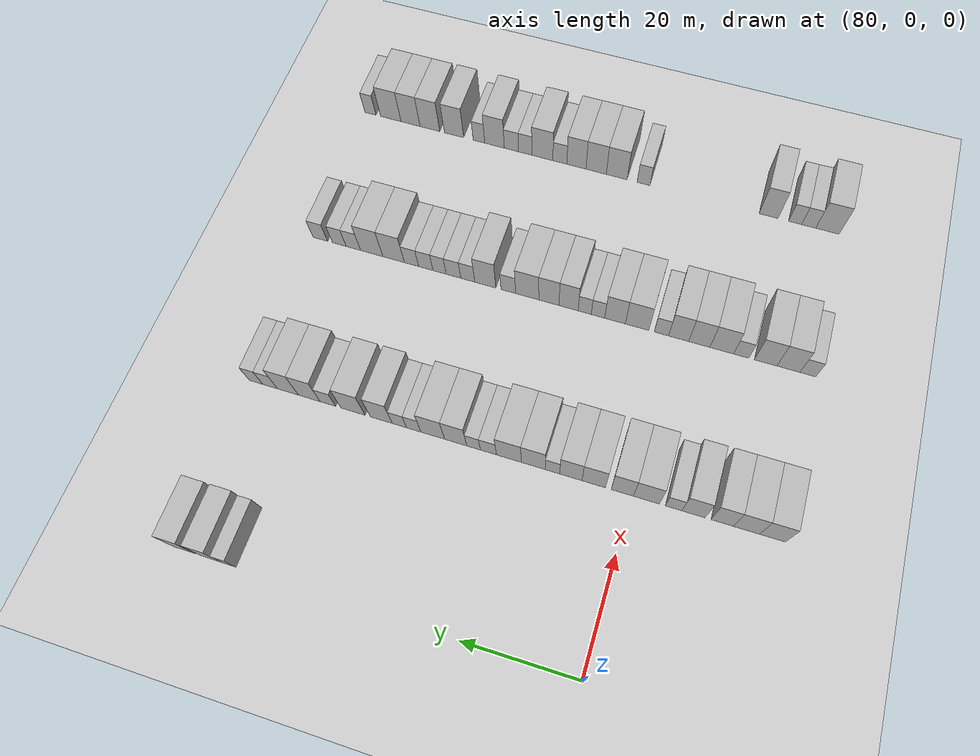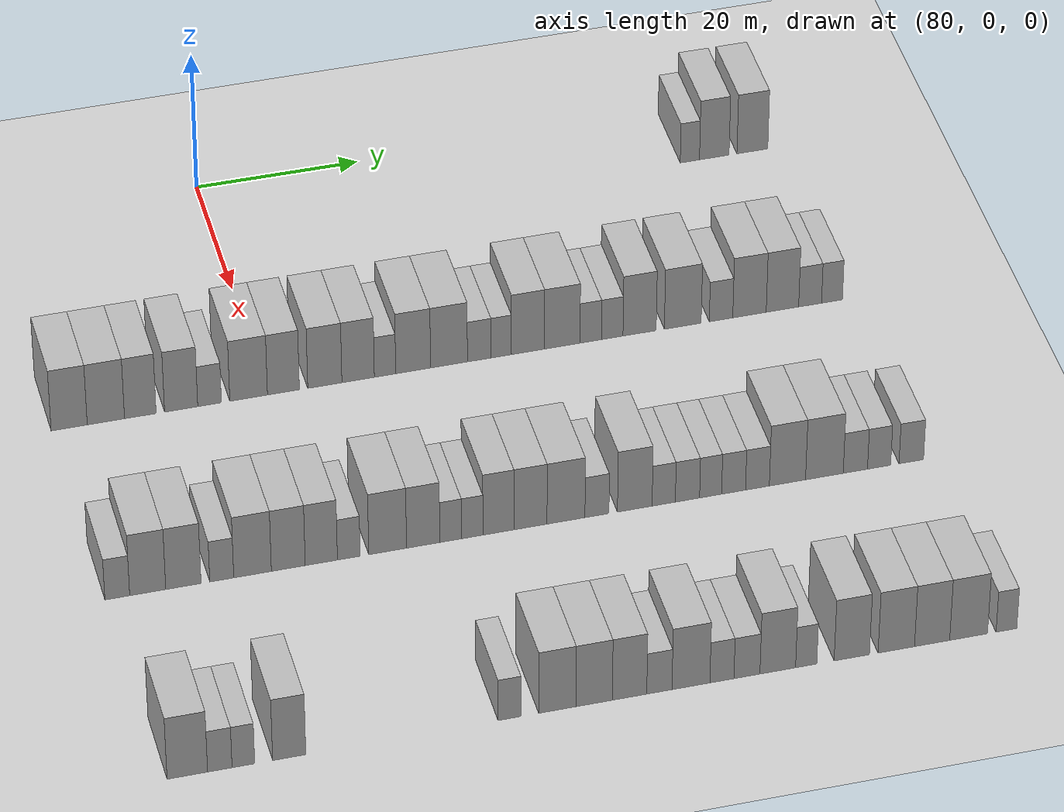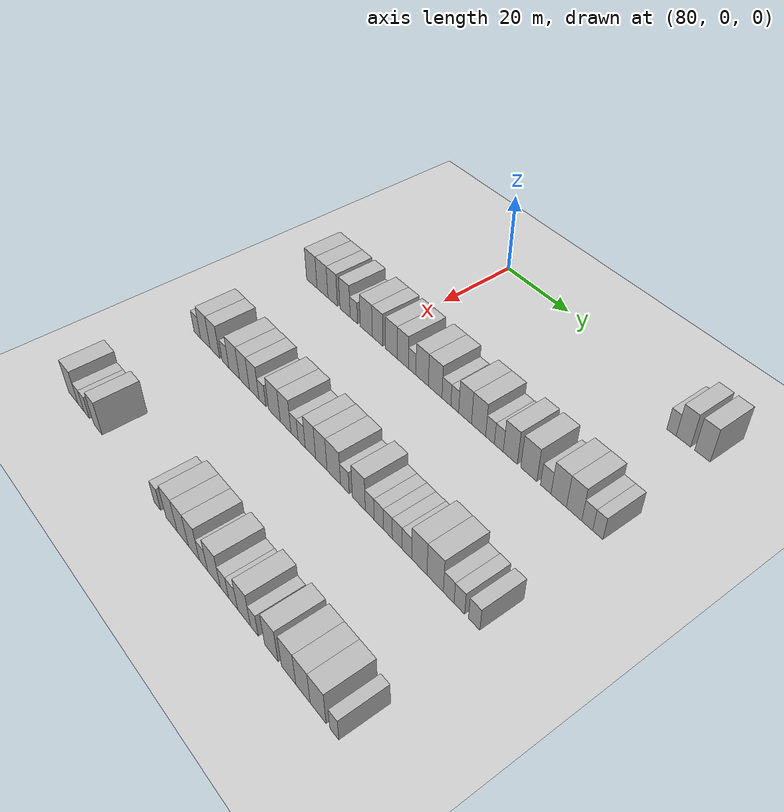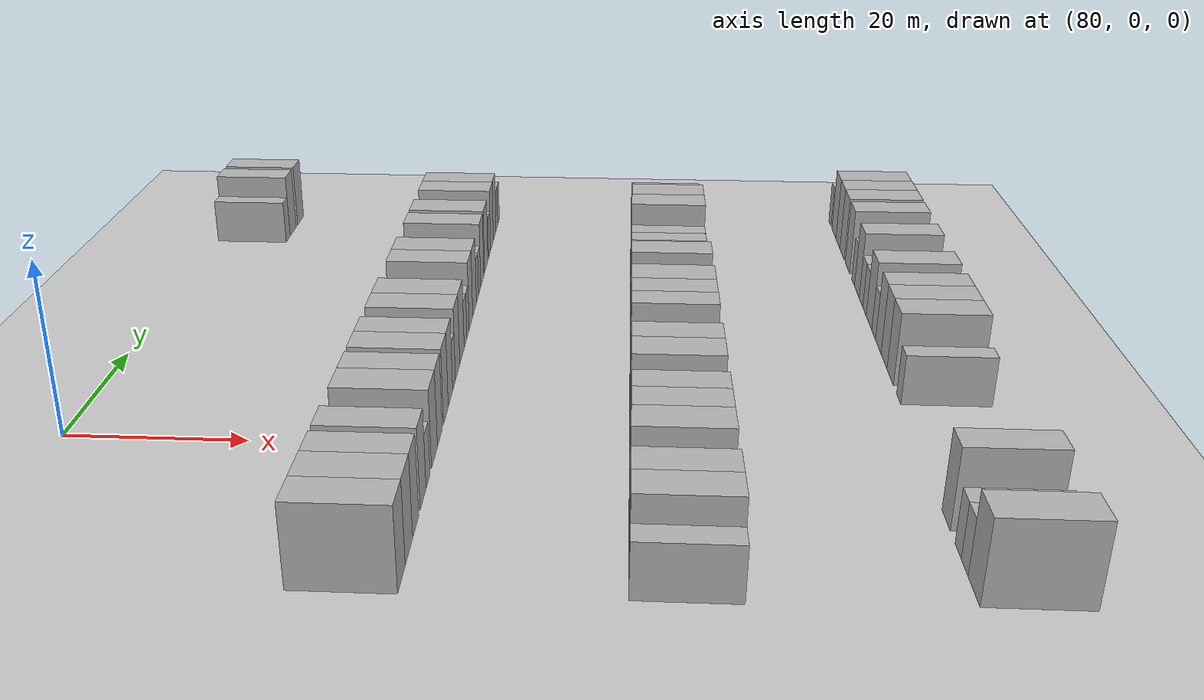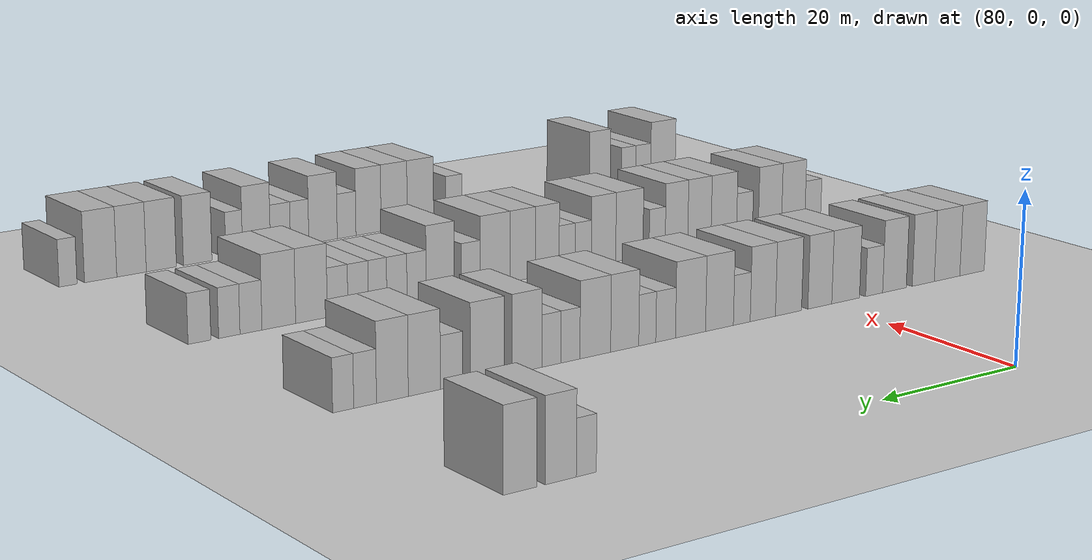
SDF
<sdf version="1.6">
 <world name="default">
  <include>
   <name>ground_plane_2</name>
   <uri>model://HANNAS_ground_plane</uri>
   <pose>100 0 0  0 0 0</pose>
  </include>
  <model name="building_613">
   <static>1</static>
   <pose>85.0000 59.2062 0 0.000000 0.000000 0.000000</pose>
   <link name="link">
    <pose>0 0 3.00 0 0 0</pose>
    <collision name="collision"><geometry><box><size>10.0000 2.4349 6.0000</size></box></geometry></collision>
    <visual name="visual">
     <cast_shadows>0</cast_shadows>
     <geometry><box><size>10.0000 2.4349 6.0000</size></box></geometry>
     <material>
      <script>
       <uri>model://HANNAS_wall/materials/scripts</uri>
       <uri>model://HANNAS_wall/materials/textures</uri>
       <name>vrc/HANNAS_wall</name>
      </script>
     </material>
    </visual>
   </link>
  </model>
  <model name="building_614">
   <static>1</static>
   <pose>85.0000 62.2932 0 0.000000 0.000000 0.000000</pose>
   <link name="link">
    <pose>0 0 4.50 0 0 0</pose>
    <collision name="collision"><geometry><box><size>10.0000 3.7392 9.0000</size></box></geometry></collision>
    <visual name="visual">
     <cast_shadows>0</cast_shadows>
     <geometry><box><size>10.0000 3.7392 9.0000</size></box></geometry>
     <material>
      <script>
       <uri>model://HANNAS_wall/materials/scripts</uri>
       <uri>model://HANNAS_wall/materials/textures</uri>
       <name>vrc/HANNAS_wall</name>
      </script>
     </material>
    </visual>
   </link>
  </model>
  <model name="building_615">
   <static>1</static>
   <pose>85.0000 67.1182 0 0.000000 0.000000 0.000000</pose>
   <link name="link">
    <pose>0 0 4.50 0 0 0</pose>
    <collision name="collision"><geometry><box><size>10.0000 3.9108 9.0000</size></box></geometry></collision>
    <visual name="visual">
     <cast_shadows>0</cast_shadows>
     <geometry><box><size>10.0000 3.9108 9.0000</size></box></geometry>
     <material>
      <script>
       <uri>model://HANNAS_wall/materials/scripts</uri>
       <uri>model://HANNAS_wall/materials/textures</uri>
       <name>vrc/HANNAS_wall</name>
      </script>
     </material>
    </visual>
   </link>
  </model>
  <model name="building_824">
   <static>1</static>
   <pose>115.0000 -23.7211 0 0.000000 0.000000 0.000000</pose>
   <link name="link">
    <pose>0 0 4.50 0 0 0</pose>
    <collision name="collision"><geometry><box><size>10.0000 4.2530 9.0000</size></box></geometry></collision>
    <visual name="visual">
     <cast_shadows>0</cast_shadows>
     <geometry><box><size>10.0000 4.2530 9.0000</size></box></geometry>
     <material>
      <script>
       <uri>model://HANNAS_wall/materials/scripts</uri>
       <uri>model://HANNAS_wall/materials/textures</uri>
       <name>vrc/HANNAS_wall</name>
      </script>
     </material>
    </visual>
   </link>
  </model>
  <model name="building_825">
   <static>1</static>
   <pose>115.0000 -19.3977 0 0.000000 0.000000 0.000000</pose>
   <link name="link">
    <pose>0 0 4.50 0 0 0</pose>
    <collision name="collision"><geometry><box><size>10.0000 4.3937 9.0000</size></box></geometry></collision>
    <visual name="visual">
     <cast_shadows>0</cast_shadows>
     <geometry><box><size>10.0000 4.3937 9.0000</size></box></geometry>
     <material>
      <script>
       <uri>model://HANNAS_wall/materials/scripts</uri>
       <uri>model://HANNAS_wall/materials/textures</uri>
       <name>vrc/HANNAS_wall</name>
      </script>
     </material>
    </visual>
   </link>
  </model>
  <model name="building_826">
   <static>1</static>
   <pose>115.0000 -15.3329 0 0.000000 0.000000 0.000000</pose>
   <link name="link">
    <pose>0 0 4.50 0 0 0</pose>
    <collision name="collision"><geometry><box><size>10.0000 3.7359 9.0000</size></box></geometry></collision>
    <visual name="visual">
     <cast_shadows>0</cast_shadows>
     <geometry><box><size>10.0000 3.7359 9.0000</size></box></geometry>
     <material>
      <script>
       <uri>model://HANNAS_wall/materials/scripts</uri>
       <uri>model://HANNAS_wall/materials/textures</uri>
       <name>vrc/HANNAS_wall</name>
      </script>
     </material>
    </visual>
   </link>
  </model>
  <model name="building_827">
   <static>1</static>
   <pose>115.0000 -10.4981 0 0.000000 0.000000 0.000000</pose>
   <link name="link">
    <pose>0 0 4.50 0 0 0</pose>
    <collision name="collision"><geometry><box><size>10.0000 3.9338 9.0000</size></box></geometry></collision>
    <visual name="visual">
     <cast_shadows>0</cast_shadows>
     <geometry><box><size>10.0000 3.9338 9.0000</size></box></geometry>
     <material>
      <script>
       <uri>model://HANNAS_wall/materials/scripts</uri>
       <uri>model://HANNAS_wall/materials/textures</uri>
       <name>vrc/HANNAS_wall</name>
      </script>
     </material>
    </visual>
   </link>
  </model>
  <model name="building_828">
   <static>1</static>
   <pose>115.0000 -7.1282 0 0.000000 0.000000 0.000000</pose>
   <link name="link">
    <pose>0 0 3.00 0 0 0</pose>
    <collision name="collision"><geometry><box><size>10.0000 2.8060 6.0000</size></box></geometry></collision>
    <visual name="visual">
     <cast_shadows>0</cast_shadows>
     <geometry><box><size>10.0000 2.8060 6.0000</size></box></geometry>
     <material>
      <script>
       <uri>model://HANNAS_wall/materials/scripts</uri>
       <uri>model://HANNAS_wall/materials/textures</uri>
       <name>vrc/HANNAS_wall</name>
      </script>
     </material>
    </visual>
   </link>
  </model>
  <model name="building_829">
   <static>1</static>
   <pose>115.0000 -2.4853 0 0.000000 0.000000 0.000000</pose>
   <link name="link">
    <pose>0 0 4.50 0 0 0</pose>
    <collision name="collision"><geometry><box><size>10.0000 4.4798 9.0000</size></box></geometry></collision>
    <visual name="visual">
     <cast_shadows>0</cast_shadows>
     <geometry><box><size>10.0000 4.4798 9.0000</size></box></geometry>
     <material>
      <script>
       <uri>model://HANNAS_wall/materials/scripts</uri>
       <uri>model://HANNAS_wall/materials/textures</uri>
       <name>vrc/HANNAS_wall</name>
      </script>
     </material>
    </visual>
   </link>
  </model>
  <model name="building_830">
   <static>1</static>
   <pose>115.0000 1.6591 0 0.000000 0.000000 0.000000</pose>
   <link name="link">
    <pose>0 0 4.50 0 0 0</pose>
    <collision name="collision"><geometry><box><size>10.0000 3.8090 9.0000</size></box></geometry></collision>
    <visual name="visual">
     <cast_shadows>0</cast_shadows>
     <geometry><box><size>10.0000 3.8090 9.0000</size></box></geometry>
     <material>
      <script>
       <uri>model://HANNAS_wall/materials/scripts</uri>
       <uri>model://HANNAS_wall/materials/textures</uri>
       <name>vrc/HANNAS_wall</name>
      </script>
     </material>
    </visual>
   </link>
  </model>
  <model name="building_831">
   <static>1</static>
   <pose>115.0000 6.6049 0 0.000000 0.000000 0.000000</pose>
   <link name="link">
    <pose>0 0 4.50 0 0 0</pose>
    <collision name="collision"><geometry><box><size>10.0000 4.0824 9.0000</size></box></geometry></collision>
    <visual name="visual">
     <cast_shadows>0</cast_shadows>
     <geometry><box><size>10.0000 4.0824 9.0000</size></box></geometry>
     <material>
      <script>
       <uri>model://HANNAS_wall/materials/scripts</uri>
       <uri>model://HANNAS_wall/materials/textures</uri>
       <name>vrc/HANNAS_wall</name>
      </script>
     </material>
    </visual>
   </link>
  </model>
  <model name="building_832">
   <static>1</static>
   <pose>115.0000 10.5912 0 0.000000 0.000000 0.000000</pose>
   <link name="link">
    <pose>0 0 4.50 0 0 0</pose>
    <collision name="collision"><geometry><box><size>10.0000 3.8902 9.0000</size></box></geometry></collision>
    <visual name="visual">
     <cast_shadows>0</cast_shadows>
     <geometry><box><size>10.0000 3.8902 9.0000</size></box></geometry>
     <material>
      <script>
       <uri>model://HANNAS_wall/materials/scripts</uri>
       <uri>model://HANNAS_wall/materials/textures</uri>
       <name>vrc/HANNAS_wall</name>
      </script>
     </material>
    </visual>
   </link>
  </model>
  <model name="building_833">
   <static>1</static>
   <pose>115.0000 13.8170 0 0.000000 0.000000 0.000000</pose>
   <link name="link">
    <pose>0 0 3.00 0 0 0</pose>
    <collision name="collision"><geometry><box><size>10.0000 2.5616 6.0000</size></box></geometry></collision>
    <visual name="visual">
     <cast_shadows>0</cast_shadows>
     <geometry><box><size>10.0000 2.5616 6.0000</size></box></geometry>
     <material>
      <script>
       <uri>model://HANNAS_wall/materials/scripts</uri>
       <uri>model://HANNAS_wall/materials/textures</uri>
       <name>vrc/HANNAS_wall</name>
      </script>
     </material>
    </visual>
   </link>
  </model>
  <model name="building_834">
   <static>1</static>
   <pose>115.0000 17.1924 0 0.000000 0.000000 0.000000</pose>
   <link name="link">
    <pose>0 0 4.50 0 0 0</pose>
    <collision name="collision"><geometry><box><size>10.0000 4.1891 9.0000</size></box></geometry></collision>
    <visual name="visual">
     <cast_shadows>0</cast_shadows>
     <geometry><box><size>10.0000 4.1891 9.0000</size></box></geometry>
     <material>
      <script>
       <uri>model://HANNAS_wall/materials/scripts</uri>
       <uri>model://HANNAS_wall/materials/textures</uri>
       <name>vrc/HANNAS_wall</name>
      </script>
     </material>
    </visual>
   </link>
  </model>
  <model name="building_835">
   <static>1</static>
   <pose>115.0000 21.5100 0 0.000000 0.000000 0.000000</pose>
   <link name="link">
    <pose>0 0 4.50 0 0 0</pose>
    <collision name="collision"><geometry><box><size>10.0000 4.4462 9.0000</size></box></geometry></collision>
    <visual name="visual">
     <cast_shadows>0</cast_shadows>
     <geometry><box><size>10.0000 4.4462 9.0000</size></box></geometry>
     <material>
      <script>
       <uri>model://HANNAS_wall/materials/scripts</uri>
       <uri>model://HANNAS_wall/materials/textures</uri>
       <name>vrc/HANNAS_wall</name>
      </script>
     </material>
    </visual>
   </link>
  </model>
  <model name="building_836">
   <static>1</static>
   <pose>115.0000 25.1641 0 0.000000 0.000000 0.000000</pose>
   <link name="link">
    <pose>0 0 3.00 0 0 0</pose>
    <collision name="collision"><geometry><box><size>10.0000 2.8620 6.0000</size></box></geometry></collision>
    <visual name="visual">
     <cast_shadows>0</cast_shadows>
     <geometry><box><size>10.0000 2.8620 6.0000</size></box></geometry>
     <material>
      <script>
       <uri>model://HANNAS_wall/materials/scripts</uri>
       <uri>model://HANNAS_wall/materials/textures</uri>
       <name>vrc/HANNAS_wall</name>
      </script>
     </material>
    </visual>
   </link>
  </model>
  <model name="building_837">
   <static>1</static>
   <pose>115.0000 27.8243 0 0.000000 0.000000 0.000000</pose>
   <link name="link">
    <pose>0 0 3.00 0 0 0</pose>
    <collision name="collision"><geometry><box><size>10.0000 2.4583 6.0000</size></box></geometry></collision>
    <visual name="visual">
     <cast_shadows>0</cast_shadows>
     <geometry><box><size>10.0000 2.4583 6.0000</size></box></geometry>
     <material>
      <script>
       <uri>model://HANNAS_wall/materials/scripts</uri>
       <uri>model://HANNAS_wall/materials/textures</uri>
       <name>vrc/HANNAS_wall</name>
      </script>
     </material>
    </visual>
   </link>
  </model>
  <model name="building_838">
   <static>1</static>
   <pose>115.0000 31.0563 0 0.000000 0.000000 0.000000</pose>
   <link name="link">
    <pose>0 0 4.50 0 0 0</pose>
    <collision name="collision"><geometry><box><size>10.0000 4.0057 9.0000</size></box></geometry></collision>
    <visual name="visual">
     <cast_shadows>0</cast_shadows>
     <geometry><box><size>10.0000 4.0057 9.0000</size></box></geometry>
     <material>
      <script>
       <uri>model://HANNAS_wall/materials/scripts</uri>
       <uri>model://HANNAS_wall/materials/textures</uri>
       <name>vrc/HANNAS_wall</name>
      </script>
     </material>
    </visual>
   </link>
  </model>
  <model name="building_839">
   <static>1</static>
   <pose>115.0000 35.2134 0 0.000000 0.000000 0.000000</pose>
   <link name="link">
    <pose>0 0 4.50 0 0 0</pose>
    <collision name="collision"><geometry><box><size>10.0000 4.3085 9.0000</size></box></geometry></collision>
    <visual name="visual">
     <cast_shadows>0</cast_shadows>
     <geometry><box><size>10.0000 4.3085 9.0000</size></box></geometry>
     <material>
      <script>
       <uri>model://HANNAS_wall/materials/scripts</uri>
       <uri>model://HANNAS_wall/materials/textures</uri>
       <name>vrc/HANNAS_wall</name>
      </script>
     </material>
    </visual>
   </link>
  </model>
  <model name="building_840">
   <static>1</static>
   <pose>115.0000 38.6739 0 0.000000 0.000000 0.000000</pose>
   <link name="link">
    <pose>0 0 3.00 0 0 0</pose>
    <collision name="collision"><geometry><box><size>10.0000 2.6126 6.0000</size></box></geometry></collision>
    <visual name="visual">
     <cast_shadows>0</cast_shadows>
     <geometry><box><size>10.0000 2.6126 6.0000</size></box></geometry>
     <material>
      <script>
       <uri>model://HANNAS_wall/materials/scripts</uri>
       <uri>model://HANNAS_wall/materials/textures</uri>
       <name>vrc/HANNAS_wall</name>
      </script>
     </material>
    </visual>
   </link>
  </model>
  <model name="building_841">
   <static>1</static>
   <pose>115.0000 41.2891 0 0.000000 0.000000 0.000000</pose>
   <link name="link">
    <pose>0 0 3.00 0 0 0</pose>
    <collision name="collision"><geometry><box><size>10.0000 2.6176 6.0000</size></box></geometry></collision>
    <visual name="visual">
     <cast_shadows>0</cast_shadows>
     <geometry><box><size>10.0000 2.6176 6.0000</size></box></geometry>
     <material>
      <script>
       <uri>model://HANNAS_wall/materials/scripts</uri>
       <uri>model://HANNAS_wall/materials/textures</uri>
       <name>vrc/HANNAS_wall</name>
      </script>
     </material>
    </visual>
   </link>
  </model>
  <model name="building_842">
   <static>1</static>
   <pose>115.0000 44.6232 0 0.000000 0.000000 0.000000</pose>
   <link name="link">
    <pose>0 0 4.50 0 0 0</pose>
    <collision name="collision"><geometry><box><size>10.0000 4.0507 9.0000</size></box></geometry></collision>
    <visual name="visual">
     <cast_shadows>0</cast_shadows>
     <geometry><box><size>10.0000 4.0507 9.0000</size></box></geometry>
     <material>
      <script>
       <uri>model://HANNAS_wall/materials/scripts</uri>
       <uri>model://HANNAS_wall/materials/textures</uri>
       <name>vrc/HANNAS_wall</name>
      </script>
     </material>
    </visual>
   </link>
  </model>
  <model name="building_843">
   <static>1</static>
   <pose>115.0000 49.8970 0 0.000000 0.000000 0.000000</pose>
   <link name="link">
    <pose>0 0 4.50 0 0 0</pose>
    <collision name="collision"><geometry><box><size>10.0000 4.4969 9.0000</size></box></geometry></collision>
    <visual name="visual">
     <cast_shadows>0</cast_shadows>
     <geometry><box><size>10.0000 4.4969 9.0000</size></box></geometry>
     <material>
      <script>
       <uri>model://HANNAS_wall/materials/scripts</uri>
       <uri>model://HANNAS_wall/materials/textures</uri>
       <name>vrc/HANNAS_wall</name>
      </script>
     </material>
    </visual>
   </link>
  </model>
  <model name="building_844">
   <static>1</static>
   <pose>115.0000 54.5855 0 0.000000 0.000000 0.000000</pose>
   <link name="link">
    <pose>0 0 3.00 0 0 0</pose>
    <collision name="collision"><geometry><box><size>10.0000 2.8801 6.0000</size></box></geometry></collision>
    <visual name="visual">
     <cast_shadows>0</cast_shadows>
     <geometry><box><size>10.0000 2.8801 6.0000</size></box></geometry>
     <material>
      <script>
       <uri>model://HANNAS_wall/materials/scripts</uri>
       <uri>model://HANNAS_wall/materials/textures</uri>
       <name>vrc/HANNAS_wall</name>
      </script>
     </material>
    </visual>
   </link>
  </model>
  <model name="building_845">
   <static>1</static>
   <pose>115.0000 58.0793 0 0.000000 0.000000 0.000000</pose>
   <link name="link">
    <pose>0 0 4.50 0 0 0</pose>
    <collision name="collision"><geometry><box><size>10.0000 4.1077 9.0000</size></box></geometry></collision>
    <visual name="visual">
     <cast_shadows>0</cast_shadows>
     <geometry><box><size>10.0000 4.1077 9.0000</size></box></geometry>
     <material>
      <script>
       <uri>model://HANNAS_wall/materials/scripts</uri>
       <uri>model://HANNAS_wall/materials/textures</uri>
       <name>vrc/HANNAS_wall</name>
      </script>
     </material>
    </visual>
   </link>
  </model>
  <model name="building_846">
   <static>1</static>
   <pose>115.0000 62.1308 0 0.000000 0.000000 0.000000</pose>
   <link name="link">
    <pose>0 0 4.50 0 0 0</pose>
    <collision name="collision"><geometry><box><size>10.0000 3.9952 9.0000</size></box></geometry></collision>
    <visual name="visual">
     <cast_shadows>0</cast_shadows>
     <geometry><box><size>10.0000 3.9952 9.0000</size></box></geometry>
     <material>
      <script>
       <uri>model://HANNAS_wall/materials/scripts</uri>
       <uri>model://HANNAS_wall/materials/textures</uri>
       <name>vrc/HANNAS_wall</name>
      </script>
     </material>
    </visual>
   </link>
  </model>
  <model name="building_847">
   <static>1</static>
   <pose>115.0000 65.5390 0 0.000000 0.000000 0.000000</pose>
   <link name="link">
    <pose>0 0 3.00 0 0 0</pose>
    <collision name="collision"><geometry><box><size>10.0000 2.8212 6.0000</size></box></geometry></collision>
    <visual name="visual">
     <cast_shadows>0</cast_shadows>
     <geometry><box><size>10.0000 2.8212 6.0000</size></box></geometry>
     <material>
      <script>
       <uri>model://HANNAS_wall/materials/scripts</uri>
       <uri>model://HANNAS_wall/materials/textures</uri>
       <name>vrc/HANNAS_wall</name>
      </script>
     </material>
    </visual>
   </link>
  </model>
  <model name="building_848">
   <static>1</static>
   <pose>115.0000 68.2395 0 0.000000 0.000000 0.000000</pose>
   <link name="link">
    <pose>0 0 3.00 0 0 0</pose>
    <collision name="collision"><geometry><box><size>10.0000 2.5798 6.0000</size></box></geometry></collision>
    <visual name="visual">
     <cast_shadows>0</cast_shadows>
     <geometry><box><size>10.0000 2.5798 6.0000</size></box></geometry>
     <material>
      <script>
       <uri>model://HANNAS_wall/materials/scripts</uri>
       <uri>model://HANNAS_wall/materials/textures</uri>
       <name>vrc/HANNAS_wall</name>
      </script>
     </material>
    </visual>
   </link>
  </model>
  <model name="building_1062">
   <static>1</static>
   <pose>145.0000 -24.2479 0 0.000000 0.000000 0.000000</pose>
   <link name="link">
    <pose>0 0 3.00 0 0 0</pose>
    <collision name="collision"><geometry><box><size>10.0000 2.8343 6.0000</size></box></geometry></collision>
    <visual name="visual">
     <cast_shadows>0</cast_shadows>
     <geometry><box><size>10.0000 2.8343 6.0000</size></box></geometry>
     <material>
      <script>
       <uri>model://HANNAS_wall/materials/scripts</uri>
       <uri>model://HANNAS_wall/materials/textures</uri>
       <name>vrc/HANNAS_wall</name>
      </script>
     </material>
    </visual>
   </link>
  </model>
  <model name="building_1063">
   <static>1</static>
   <pose>145.0000 -20.7683 0 0.000000 0.000000 0.000000</pose>
   <link name="link">
    <pose>0 0 4.50 0 0 0</pose>
    <collision name="collision"><geometry><box><size>10.0000 4.1250 9.0000</size></box></geometry></collision>
    <visual name="visual">
     <cast_shadows>0</cast_shadows>
     <geometry><box><size>10.0000 4.1250 9.0000</size></box></geometry>
     <material>
      <script>
       <uri>model://HANNAS_wall/materials/scripts</uri>
       <uri>model://HANNAS_wall/materials/textures</uri>
       <name>vrc/HANNAS_wall</name>
      </script>
     </material>
    </visual>
   </link>
  </model>
  <model name="building_1064">
   <static>1</static>
   <pose>145.0000 -16.6817 0 0.000000 0.000000 0.000000</pose>
   <link name="link">
    <pose>0 0 4.50 0 0 0</pose>
    <collision name="collision"><geometry><box><size>10.0000 4.0482 9.0000</size></box></geometry></collision>
    <visual name="visual">
     <cast_shadows>0</cast_shadows>
     <geometry><box><size>10.0000 4.0482 9.0000</size></box></geometry>
     <material>
      <script>
       <uri>model://HANNAS_wall/materials/scripts</uri>
       <uri>model://HANNAS_wall/materials/textures</uri>
       <name>vrc/HANNAS_wall</name>
      </script>
     </material>
    </visual>
   </link>
  </model>
  <model name="building_1065">
   <static>1</static>
   <pose>145.0000 -12.2792 0 0.000000 0.000000 0.000000</pose>
   <link name="link">
    <pose>0 0 3.00 0 0 0</pose>
    <collision name="collision"><geometry><box><size>10.0000 2.7568 6.0000</size></box></geometry></collision>
    <visual name="visual">
     <cast_shadows>0</cast_shadows>
     <geometry><box><size>10.0000 2.7568 6.0000</size></box></geometry>
     <material>
      <script>
       <uri>model://HANNAS_wall/materials/scripts</uri>
       <uri>model://HANNAS_wall/materials/textures</uri>
       <name>vrc/HANNAS_wall</name>
      </script>
     </material>
    </visual>
   </link>
  </model>
  <model name="building_1066">
   <static>1</static>
   <pose>145.0000 -8.7346 0 0.000000 0.000000 0.000000</pose>
   <link name="link">
    <pose>0 0 4.50 0 0 0</pose>
    <collision name="collision"><geometry><box><size>10.0000 4.3325 9.0000</size></box></geometry></collision>
    <visual name="visual">
     <cast_shadows>0</cast_shadows>
     <geometry><box><size>10.0000 4.3325 9.0000</size></box></geometry>
     <material>
      <script>
       <uri>model://HANNAS_wall/materials/scripts</uri>
       <uri>model://HANNAS_wall/materials/textures</uri>
       <name>vrc/HANNAS_wall</name>
      </script>
     </material>
    </visual>
   </link>
  </model>
  <model name="building_1067">
   <static>1</static>
   <pose>145.0000 -4.6131 0 0.000000 0.000000 0.000000</pose>
   <link name="link">
    <pose>0 0 4.50 0 0 0</pose>
    <collision name="collision"><geometry><box><size>10.0000 3.9104 9.0000</size></box></geometry></collision>
    <visual name="visual">
     <cast_shadows>0</cast_shadows>
     <geometry><box><size>10.0000 3.9104 9.0000</size></box></geometry>
     <material>
      <script>
       <uri>model://HANNAS_wall/materials/scripts</uri>
       <uri>model://HANNAS_wall/materials/textures</uri>
       <name>vrc/HANNAS_wall</name>
      </script>
     </material>
    </visual>
   </link>
  </model>
  <model name="building_1068">
   <static>1</static>
   <pose>145.0000 -0.7972 0 0.000000 0.000000 0.000000</pose>
   <link name="link">
    <pose>0 0 4.50 0 0 0</pose>
    <collision name="collision"><geometry><box><size>10.0000 3.7215 9.0000</size></box></geometry></collision>
    <visual name="visual">
     <cast_shadows>0</cast_shadows>
     <geometry><box><size>10.0000 3.7215 9.0000</size></box></geometry>
     <material>
      <script>
       <uri>model://HANNAS_wall/materials/scripts</uri>
       <uri>model://HANNAS_wall/materials/textures</uri>
       <name>vrc/HANNAS_wall</name>
      </script>
     </material>
    </visual>
   </link>
  </model>
  <model name="building_1069">
   <static>1</static>
   <pose>145.0000 2.3789 0 0.000000 0.000000 0.000000</pose>
   <link name="link">
    <pose>0 0 3.00 0 0 0</pose>
    <collision name="collision"><geometry><box><size>10.0000 2.6307 6.0000</size></box></geometry></collision>
    <visual name="visual">
     <cast_shadows>0</cast_shadows>
     <geometry><box><size>10.0000 2.6307 6.0000</size></box></geometry>
     <material>
      <script>
       <uri>model://HANNAS_wall/materials/scripts</uri>
       <uri>model://HANNAS_wall/materials/textures</uri>
       <name>vrc/HANNAS_wall</name>
      </script>
     </material>
    </visual>
   </link>
  </model>
  <model name="building_1070">
   <static>1</static>
   <pose>145.0000 6.8866 0 0.000000 0.000000 0.000000</pose>
   <link name="link">
    <pose>0 0 4.50 0 0 0</pose>
    <collision name="collision"><geometry><box><size>10.0000 4.3846 9.0000</size></box></geometry></collision>
    <visual name="visual">
     <cast_shadows>0</cast_shadows>
     <geometry><box><size>10.0000 4.3846 9.0000</size></box></geometry>
     <material>
      <script>
       <uri>model://HANNAS_wall/materials/scripts</uri>
       <uri>model://HANNAS_wall/materials/textures</uri>
       <name>vrc/HANNAS_wall</name>
      </script>
     </material>
    </visual>
   </link>
  </model>
  <model name="building_1071">
   <static>1</static>
   <pose>145.0000 11.0160 0 0.000000 0.000000 0.000000</pose>
   <link name="link">
    <pose>0 0 4.50 0 0 0</pose>
    <collision name="collision"><geometry><box><size>10.0000 3.8743 9.0000</size></box></geometry></collision>
    <visual name="visual">
     <cast_shadows>0</cast_shadows>
     <geometry><box><size>10.0000 3.8743 9.0000</size></box></geometry>
     <material>
      <script>
       <uri>model://HANNAS_wall/materials/scripts</uri>
       <uri>model://HANNAS_wall/materials/textures</uri>
       <name>vrc/HANNAS_wall</name>
      </script>
     </material>
    </visual>
   </link>
  </model>
  <model name="building_1072">
   <static>1</static>
   <pose>145.0000 14.2255 0 0.000000 0.000000 0.000000</pose>
   <link name="link">
    <pose>0 0 3.00 0 0 0</pose>
    <collision name="collision"><geometry><box><size>10.0000 2.5445 6.0000</size></box></geometry></collision>
    <visual name="visual">
     <cast_shadows>0</cast_shadows>
     <geometry><box><size>10.0000 2.5445 6.0000</size></box></geometry>
     <material>
      <script>
       <uri>model://HANNAS_wall/materials/scripts</uri>
       <uri>model://HANNAS_wall/materials/textures</uri>
       <name>vrc/HANNAS_wall</name>
      </script>
     </material>
    </visual>
   </link>
  </model>
  <model name="building_1073">
   <static>1</static>
   <pose>145.0000 16.7434 0 0.000000 0.000000 0.000000</pose>
   <link name="link">
    <pose>0 0 3.00 0 0 0</pose>
    <collision name="collision"><geometry><box><size>10.0000 2.4913 6.0000</size></box></geometry></collision>
    <visual name="visual">
     <cast_shadows>0</cast_shadows>
     <geometry><box><size>10.0000 2.4913 6.0000</size></box></geometry>
     <material>
      <script>
       <uri>model://HANNAS_wall/materials/scripts</uri>
       <uri>model://HANNAS_wall/materials/textures</uri>
       <name>vrc/HANNAS_wall</name>
      </script>
     </material>
    </visual>
   </link>
  </model>
  <model name="building_1074">
   <static>1</static>
   <pose>145.0000 19.8049 0 0.000000 0.000000 0.000000</pose>
   <link name="link">
    <pose>0 0 4.50 0 0 0</pose>
    <collision name="collision"><geometry><box><size>10.0000 3.6317 9.0000</size></box></geometry></collision>
    <visual name="visual">
     <cast_shadows>0</cast_shadows>
     <geometry><box><size>10.0000 3.6317 9.0000</size></box></geometry>
     <material>
      <script>
       <uri>model://HANNAS_wall/materials/scripts</uri>
       <uri>model://HANNAS_wall/materials/textures</uri>
       <name>vrc/HANNAS_wall</name>
      </script>
     </material>
    </visual>
   </link>
  </model>
  <model name="building_1075">
   <static>1</static>
   <pose>145.0000 23.5557 0 0.000000 0.000000 0.000000</pose>
   <link name="link">
    <pose>0 0 4.50 0 0 0</pose>
    <collision name="collision"><geometry><box><size>10.0000 3.8698 9.0000</size></box></geometry></collision>
    <visual name="visual">
     <cast_shadows>0</cast_shadows>
     <geometry><box><size>10.0000 3.8698 9.0000</size></box></geometry>
     <material>
      <script>
       <uri>model://HANNAS_wall/materials/scripts</uri>
       <uri>model://HANNAS_wall/materials/textures</uri>
       <name>vrc/HANNAS_wall</name>
      </script>
     </material>
    </visual>
   </link>
  </model>
  <model name="building_1076">
   <static>1</static>
   <pose>145.0000 27.7187 0 0.000000 0.000000 0.000000</pose>
   <link name="link">
    <pose>0 0 4.50 0 0 0</pose>
    <collision name="collision"><geometry><box><size>10.0000 4.4563 9.0000</size></box></geometry></collision>
    <visual name="visual">
     <cast_shadows>0</cast_shadows>
     <geometry><box><size>10.0000 4.4563 9.0000</size></box></geometry>
     <material>
      <script>
       <uri>model://HANNAS_wall/materials/scripts</uri>
       <uri>model://HANNAS_wall/materials/textures</uri>
       <name>vrc/HANNAS_wall</name>
      </script>
     </material>
    </visual>
   </link>
  </model>
  <model name="building_1077">
   <static>1</static>
   <pose>145.0000 31.3592 0 0.000000 0.000000 0.000000</pose>
   <link name="link">
    <pose>0 0 3.00 0 0 0</pose>
    <collision name="collision"><geometry><box><size>10.0000 2.8247 6.0000</size></box></geometry></collision>
    <visual name="visual">
     <cast_shadows>0</cast_shadows>
     <geometry><box><size>10.0000 2.8247 6.0000</size></box></geometry>
     <material>
      <script>
       <uri>model://HANNAS_wall/materials/scripts</uri>
       <uri>model://HANNAS_wall/materials/textures</uri>
       <name>vrc/HANNAS_wall</name>
      </script>
     </material>
    </visual>
   </link>
  </model>
  <model name="building_1078">
   <static>1</static>
   <pose>145.0000 35.8169 0 0.000000 0.000000 0.000000</pose>
   <link name="link">
    <pose>0 0 4.50 0 0 0</pose>
    <collision name="collision"><geometry><box><size>10.0000 4.0907 9.0000</size></box></geometry></collision>
    <visual name="visual">
     <cast_shadows>0</cast_shadows>
     <geometry><box><size>10.0000 4.0907 9.0000</size></box></geometry>
     <material>
      <script>
       <uri>model://HANNAS_wall/materials/scripts</uri>
       <uri>model://HANNAS_wall/materials/textures</uri>
       <name>vrc/HANNAS_wall</name>
      </script>
     </material>
    </visual>
   </link>
  </model>
  <model name="building_1079">
   <static>1</static>
   <pose>145.0000 39.2350 0 0.000000 0.000000 0.000000</pose>
   <link name="link">
    <pose>0 0 3.00 0 0 0</pose>
    <collision name="collision"><geometry><box><size>10.0000 2.7456 6.0000</size></box></geometry></collision>
    <visual name="visual">
     <cast_shadows>0</cast_shadows>
     <geometry><box><size>10.0000 2.7456 6.0000</size></box></geometry>
     <material>
      <script>
       <uri>model://HANNAS_wall/materials/scripts</uri>
       <uri>model://HANNAS_wall/materials/textures</uri>
       <name>vrc/HANNAS_wall</name>
      </script>
     </material>
    </visual>
   </link>
  </model>
  <model name="building_1080">
   <static>1</static>
   <pose>145.0000 42.0435 0 0.000000 0.000000 0.000000</pose>
   <link name="link">
    <pose>0 0 3.00 0 0 0</pose>
    <collision name="collision"><geometry><box><size>10.0000 2.8714 6.0000</size></box></geometry></collision>
    <visual name="visual">
     <cast_shadows>0</cast_shadows>
     <geometry><box><size>10.0000 2.8714 6.0000</size></box></geometry>
     <material>
      <script>
       <uri>model://HANNAS_wall/materials/scripts</uri>
       <uri>model://HANNAS_wall/materials/textures</uri>
       <name>vrc/HANNAS_wall</name>
      </script>
     </material>
    </visual>
   </link>
  </model>
  <model name="building_1081">
   <static>1</static>
   <pose>145.0000 44.7819 0 0.000000 0.000000 0.000000</pose>
   <link name="link">
    <pose>0 0 3.00 0 0 0</pose>
    <collision name="collision"><geometry><box><size>10.0000 2.6055 6.0000</size></box></geometry></collision>
    <visual name="visual">
     <cast_shadows>0</cast_shadows>
     <geometry><box><size>10.0000 2.6055 6.0000</size></box></geometry>
     <material>
      <script>
       <uri>model://HANNAS_wall/materials/scripts</uri>
       <uri>model://HANNAS_wall/materials/textures</uri>
       <name>vrc/HANNAS_wall</name>
      </script>
     </material>
    </visual>
   </link>
  </model>
  <model name="building_1082">
   <static>1</static>
   <pose>145.0000 47.5058 0 0.000000 0.000000 0.000000</pose>
   <link name="link">
    <pose>0 0 3.00 0 0 0</pose>
    <collision name="collision"><geometry><box><size>10.0000 2.8424 6.0000</size></box></geometry></collision>
    <visual name="visual">
     <cast_shadows>0</cast_shadows>
     <geometry><box><size>10.0000 2.8424 6.0000</size></box></geometry>
     <material>
      <script>
       <uri>model://HANNAS_wall/materials/scripts</uri>
       <uri>model://HANNAS_wall/materials/textures</uri>
       <name>vrc/HANNAS_wall</name>
      </script>
     </material>
    </visual>
   </link>
  </model>
  <model name="building_1083">
   <static>1</static>
   <pose>145.0000 50.3449 0 0.000000 0.000000 0.000000</pose>
   <link name="link">
    <pose>0 0 3.00 0 0 0</pose>
    <collision name="collision"><geometry><box><size>10.0000 2.8359 6.0000</size></box></geometry></collision>
    <visual name="visual">
     <cast_shadows>0</cast_shadows>
     <geometry><box><size>10.0000 2.8359 6.0000</size></box></geometry>
     <material>
      <script>
       <uri>model://HANNAS_wall/materials/scripts</uri>
       <uri>model://HANNAS_wall/materials/textures</uri>
       <name>vrc/HANNAS_wall</name>
      </script>
     </material>
    </visual>
   </link>
  </model>
  <model name="building_1084">
   <static>1</static>
   <pose>145.0000 53.9195 0 0.000000 0.000000 0.000000</pose>
   <link name="link">
    <pose>0 0 4.50 0 0 0</pose>
    <collision name="collision"><geometry><box><size>10.0000 4.3133 9.0000</size></box></geometry></collision>
    <visual name="visual">
     <cast_shadows>0</cast_shadows>
     <geometry><box><size>10.0000 4.3133 9.0000</size></box></geometry>
     <material>
      <script>
       <uri>model://HANNAS_wall/materials/scripts</uri>
       <uri>model://HANNAS_wall/materials/textures</uri>
       <name>vrc/HANNAS_wall</name>
      </script>
     </material>
    </visual>
   </link>
  </model>
  <model name="building_1085">
   <static>1</static>
   <pose>145.0000 58.3258 0 0.000000 0.000000 0.000000</pose>
   <link name="link">
    <pose>0 0 4.50 0 0 0</pose>
    <collision name="collision"><geometry><box><size>10.0000 4.4993 9.0000</size></box></geometry></collision>
    <visual name="visual">
     <cast_shadows>0</cast_shadows>
     <geometry><box><size>10.0000 4.4993 9.0000</size></box></geometry>
     <material>
      <script>
       <uri>model://HANNAS_wall/materials/scripts</uri>
       <uri>model://HANNAS_wall/materials/textures</uri>
       <name>vrc/HANNAS_wall</name>
      </script>
     </material>
    </visual>
   </link>
  </model>
  <model name="building_1086">
   <static>1</static>
   <pose>145.0000 62.0278 0 0.000000 0.000000 0.000000</pose>
   <link name="link">
    <pose>0 0 3.00 0 0 0</pose>
    <collision name="collision"><geometry><box><size>10.0000 2.9049 6.0000</size></box></geometry></collision>
    <visual name="visual">
     <cast_shadows>0</cast_shadows>
     <geometry><box><size>10.0000 2.9049 6.0000</size></box></geometry>
     <material>
      <script>
       <uri>model://HANNAS_wall/materials/scripts</uri>
       <uri>model://HANNAS_wall/materials/textures</uri>
       <name>vrc/HANNAS_wall</name>
      </script>
     </material>
    </visual>
   </link>
  </model>
  <model name="building_1087">
   <static>1</static>
   <pose>145.0000 64.8703 0 0.000000 0.000000 0.000000</pose>
   <link name="link">
    <pose>0 0 3.00 0 0 0</pose>
    <collision name="collision"><geometry><box><size>10.0000 2.7801 6.0000</size></box></geometry></collision>
    <visual name="visual">
     <cast_shadows>0</cast_shadows>
     <geometry><box><size>10.0000 2.7801 6.0000</size></box></geometry>
     <material>
      <script>
       <uri>model://HANNAS_wall/materials/scripts</uri>
       <uri>model://HANNAS_wall/materials/textures</uri>
       <name>vrc/HANNAS_wall</name>
      </script>
     </material>
    </visual>
   </link>
  </model>
  <model name="building_1088">
   <static>1</static>
   <pose>145.0000 68.7330 0 0.000000 0.000000 0.000000</pose>
   <link name="link">
    <pose>0 0 3.00 0 0 0</pose>
    <collision name="collision"><geometry><box><size>10.0000 2.9453 6.0000</size></box></geometry></collision>
    <visual name="visual">
     <cast_shadows>0</cast_shadows>
     <geometry><box><size>10.0000 2.9453 6.0000</size></box></geometry>
     <material>
      <script>
       <uri>model://HANNAS_wall/materials/scripts</uri>
       <uri>model://HANNAS_wall/materials/textures</uri>
       <name>vrc/HANNAS_wall</name>
      </script>
     </material>
    </visual>
   </link>
  </model>
  <model name="building_1301">
   <static>1</static>
   <pose>175.0000 -22.6990 0 0.000000 0.000000 0.000000</pose>
   <link name="link">
    <pose>0 0 4.50 0 0 0</pose>
    <collision name="collision"><geometry><box><size>10.0000 4.4938 9.0000</size></box></geometry></collision>
    <visual name="visual">
     <cast_shadows>0</cast_shadows>
     <geometry><box><size>10.0000 4.4938 9.0000</size></box></geometry>
     <material>
      <script>
       <uri>model://HANNAS_wall/materials/scripts</uri>
       <uri>model://HANNAS_wall/materials/textures</uri>
       <name>vrc/HANNAS_wall</name>
      </script>
     </material>
    </visual>
   </link>
  </model>
  <model name="building_1302">
   <static>1</static>
   <pose>175.0000 -19.0930 0 0.000000 0.000000 0.000000</pose>
   <link name="link">
    <pose>0 0 3.00 0 0 0</pose>
    <collision name="collision"><geometry><box><size>10.0000 2.7183 6.0000</size></box></geometry></collision>
    <visual name="visual">
     <cast_shadows>0</cast_shadows>
     <geometry><box><size>10.0000 2.7183 6.0000</size></box></geometry>
     <material>
      <script>
       <uri>model://HANNAS_wall/materials/scripts</uri>
       <uri>model://HANNAS_wall/materials/textures</uri>
       <name>vrc/HANNAS_wall</name>
      </script>
     </material>
    </visual>
   </link>
  </model>
  <model name="building_1303">
   <static>1</static>
   <pose>175.0000 -16.4753 0 0.000000 0.000000 0.000000</pose>
   <link name="link">
    <pose>0 0 3.00 0 0 0</pose>
    <collision name="collision"><geometry><box><size>10.0000 2.5170 6.0000</size></box></geometry></collision>
    <visual name="visual">
     <cast_shadows>0</cast_shadows>
     <geometry><box><size>10.0000 2.5170 6.0000</size></box></geometry>
     <material>
      <script>
       <uri>model://HANNAS_wall/materials/scripts</uri>
       <uri>model://HANNAS_wall/materials/textures</uri>
       <name>vrc/HANNAS_wall</name>
      </script>
     </material>
    </visual>
   </link>
  </model>
  <model name="building_1304">
   <static>1</static>
   <pose>175.0000 -11.3674 0 0.000000 0.000000 0.000000</pose>
   <link name="link">
    <pose>0 0 4.50 0 0 0</pose>
    <collision name="collision"><geometry><box><size>10.0000 3.6989 9.0000</size></box></geometry></collision>
    <visual name="visual">
     <cast_shadows>0</cast_shadows>
     <geometry><box><size>10.0000 3.6989 9.0000</size></box></geometry>
     <material>
      <script>
       <uri>model://HANNAS_wall/materials/scripts</uri>
       <uri>model://HANNAS_wall/materials/textures</uri>
       <name>vrc/HANNAS_wall</name>
      </script>
     </material>
    </visual>
   </link>
  </model>
  <model name="building_1305">
   <static>1</static>
   <pose>175.0000 13.3742 0 0.000000 0.000000 0.000000</pose>
   <link name="link">
    <pose>0 0 3.00 0 0 0</pose>
    <collision name="collision"><geometry><box><size>10.0000 2.5948 6.0000</size></box></geometry></collision>
    <visual name="visual">
     <cast_shadows>0</cast_shadows>
     <geometry><box><size>10.0000 2.5948 6.0000</size></box></geometry>
     <material>
      <script>
       <uri>model://HANNAS_wall/materials/scripts</uri>
       <uri>model://HANNAS_wall/materials/textures</uri>
       <name>vrc/HANNAS_wall</name>
      </script>
     </material>
    </visual>
   </link>
  </model>
  <model name="building_1306">
   <static>1</static>
   <pose>175.0000 18.7858 0 0.000000 0.000000 0.000000</pose>
   <link name="link">
    <pose>0 0 4.50 0 0 0</pose>
    <collision name="collision"><geometry><box><size>10.0000 4.2283 9.0000</size></box></geometry></collision>
    <visual name="visual">
     <cast_shadows>0</cast_shadows>
     <geometry><box><size>10.0000 4.2283 9.0000</size></box></geometry>
     <material>
      <script>
       <uri>model://HANNAS_wall/materials/scripts</uri>
       <uri>model://HANNAS_wall/materials/textures</uri>
       <name>vrc/HANNAS_wall</name>
      </script>
     </material>
    </visual>
   </link>
  </model>
  <model name="building_1307">
   <static>1</static>
   <pose>175.0000 22.9679 0 0.000000 0.000000 0.000000</pose>
   <link name="link">
    <pose>0 0 4.50 0 0 0</pose>
    <collision name="collision"><geometry><box><size>10.0000 4.1357 9.0000</size></box></geometry></collision>
    <visual name="visual">
     <cast_shadows>0</cast_shadows>
     <geometry><box><size>10.0000 4.1357 9.0000</size></box></geometry>
     <material>
      <script>
       <uri>model://HANNAS_wall/materials/scripts</uri>
       <uri>model://HANNAS_wall/materials/textures</uri>
       <name>vrc/HANNAS_wall</name>
      </script>
     </material>
    </visual>
   </link>
  </model>
  <model name="building_1308">
   <static>1</static>
   <pose>175.0000 26.9985 0 0.000000 0.000000 0.000000</pose>
   <link name="link">
    <pose>0 0 4.50 0 0 0</pose>
    <collision name="collision"><geometry><box><size>10.0000 3.9255 9.0000</size></box></geometry></collision>
    <visual name="visual">
     <cast_shadows>0</cast_shadows>
     <geometry><box><size>10.0000 3.9255 9.0000</size></box></geometry>
     <material>
      <script>
       <uri>model://HANNAS_wall/materials/scripts</uri>
       <uri>model://HANNAS_wall/materials/textures</uri>
       <name>vrc/HANNAS_wall</name>
      </script>
     </material>
    </visual>
   </link>
  </model>
  <model name="building_1309">
   <static>1</static>
   <pose>175.0000 30.4013 0 0.000000 0.000000 0.000000</pose>
   <link name="link">
    <pose>0 0 3.00 0 0 0</pose>
    <collision name="collision"><geometry><box><size>10.0000 2.8801 6.0000</size></box></geometry></collision>
    <visual name="visual">
     <cast_shadows>0</cast_shadows>
     <geometry><box><size>10.0000 2.8801 6.0000</size></box></geometry>
     <material>
      <script>
       <uri>model://HANNAS_wall/materials/scripts</uri>
       <uri>model://HANNAS_wall/materials/textures</uri>
       <name>vrc/HANNAS_wall</name>
      </script>
     </material>
    </visual>
   </link>
  </model>
  <model name="building_1310">
   <static>1</static>
   <pose>175.0000 34.0102 0 0.000000 0.000000 0.000000</pose>
   <link name="link">
    <pose>0 0 4.50 0 0 0</pose>
    <collision name="collision"><geometry><box><size>10.0000 4.3376 9.0000</size></box></geometry></collision>
    <visual name="visual">
     <cast_shadows>0</cast_shadows>
     <geometry><box><size>10.0000 4.3376 9.0000</size></box></geometry>
     <material>
      <script>
       <uri>model://HANNAS_wall/materials/scripts</uri>
       <uri>model://HANNAS_wall/materials/textures</uri>
       <name>vrc/HANNAS_wall</name>
      </script>
     </material>
    </visual>
   </link>
  </model>
  <model name="building_1311">
   <static>1</static>
   <pose>175.0000 37.5585 0 0.000000 0.000000 0.000000</pose>
   <link name="link">
    <pose>0 0 3.00 0 0 0</pose>
    <collision name="collision"><geometry><box><size>10.0000 2.7589 6.0000</size></box></geometry></collision>
    <visual name="visual">
     <cast_shadows>0</cast_shadows>
     <geometry><box><size>10.0000 2.7589 6.0000</size></box></geometry>
     <material>
      <script>
       <uri>model://HANNAS_wall/materials/scripts</uri>
       <uri>model://HANNAS_wall/materials/textures</uri>
       <name>vrc/HANNAS_wall</name>
      </script>
     </material>
    </visual>
   </link>
  </model>
  <model name="building_1312">
   <static>1</static>
   <pose>175.0000 40.4299 0 0.000000 0.000000 0.000000</pose>
   <link name="link">
    <pose>0 0 3.00 0 0 0</pose>
    <collision name="collision"><geometry><box><size>10.0000 2.9841 6.0000</size></box></geometry></collision>
    <visual name="visual">
     <cast_shadows>0</cast_shadows>
     <geometry><box><size>10.0000 2.9841 6.0000</size></box></geometry>
     <material>
      <script>
       <uri>model://HANNAS_wall/materials/scripts</uri>
       <uri>model://HANNAS_wall/materials/textures</uri>
       <name>vrc/HANNAS_wall</name>
      </script>
     </material>
    </visual>
   </link>
  </model>
  <model name="building_1313">
   <static>1</static>
   <pose>175.0000 43.9738 0 0.000000 0.000000 0.000000</pose>
   <link name="link">
    <pose>0 0 4.50 0 0 0</pose>
    <collision name="collision"><geometry><box><size>10.0000 4.1036 9.0000</size></box></geometry></collision>
    <visual name="visual">
     <cast_shadows>0</cast_shadows>
     <geometry><box><size>10.0000 4.1036 9.0000</size></box></geometry>
     <material>
      <script>
       <uri>model://HANNAS_wall/materials/scripts</uri>
       <uri>model://HANNAS_wall/materials/textures</uri>
       <name>vrc/HANNAS_wall</name>
      </script>
     </material>
    </visual>
   </link>
  </model>
  <model name="building_1314">
   <static>1</static>
   <pose>175.0000 47.2479 0 0.000000 0.000000 0.000000</pose>
   <link name="link">
    <pose>0 0 3.00 0 0 0</pose>
    <collision name="collision"><geometry><box><size>10.0000 2.4446 6.0000</size></box></geometry></collision>
    <visual name="visual">
     <cast_shadows>0</cast_shadows>
     <geometry><box><size>10.0000 2.4446 6.0000</size></box></geometry>
     <material>
      <script>
       <uri>model://HANNAS_wall/materials/scripts</uri>
       <uri>model://HANNAS_wall/materials/textures</uri>
       <name>vrc/HANNAS_wall</name>
      </script>
     </material>
    </visual>
   </link>
  </model>
  <model name="building_1315">
   <static>1</static>
   <pose>175.0000 52.5115 0 0.000000 0.000000 0.000000</pose>
   <link name="link">
    <pose>0 0 4.50 0 0 0</pose>
    <collision name="collision"><geometry><box><size>10.0000 4.0826 9.0000</size></box></geometry></collision>
    <visual name="visual">
     <cast_shadows>0</cast_shadows>
     <geometry><box><size>10.0000 4.0826 9.0000</size></box></geometry>
     <material>
      <script>
       <uri>model://HANNAS_wall/materials/scripts</uri>
       <uri>model://HANNAS_wall/materials/textures</uri>
       <name>vrc/HANNAS_wall</name>
      </script>
     </material>
    </visual>
   </link>
  </model>
  <model name="building_1316">
   <static>1</static>
   <pose>175.0000 57.6648 0 0.000000 0.000000 0.000000</pose>
   <link name="link">
    <pose>0 0 4.50 0 0 0</pose>
    <collision name="collision"><geometry><box><size>10.0000 4.2240 9.0000</size></box></geometry></collision>
    <visual name="visual">
     <cast_shadows>0</cast_shadows>
     <geometry><box><size>10.0000 4.2240 9.0000</size></box></geometry>
     <material>
      <script>
       <uri>model://HANNAS_wall/materials/scripts</uri>
       <uri>model://HANNAS_wall/materials/textures</uri>
       <name>vrc/HANNAS_wall</name>
      </script>
     </material>
    </visual>
   </link>
  </model>
  <model name="building_1317">
   <static>1</static>
   <pose>175.0000 61.8205 0 0.000000 0.000000 0.000000</pose>
   <link name="link">
    <pose>0 0 4.50 0 0 0</pose>
    <collision name="collision"><geometry><box><size>10.0000 4.0875 9.0000</size></box></geometry></collision>
    <visual name="visual">
     <cast_shadows>0</cast_shadows>
     <geometry><box><size>10.0000 4.0875 9.0000</size></box></geometry>
     <material>
      <script>
       <uri>model://HANNAS_wall/materials/scripts</uri>
       <uri>model://HANNAS_wall/materials/textures</uri>
       <name>vrc/HANNAS_wall</name>
      </script>
     </material>
    </visual>
   </link>
  </model>
  <model name="building_1318">
   <static>1</static>
   <pose>175.0000 66.0673 0 0.000000 0.000000 0.000000</pose>
   <link name="link">
    <pose>0 0 4.50 0 0 0</pose>
    <collision name="collision"><geometry><box><size>10.0000 4.4062 9.0000</size></box></geometry></collision>
    <visual name="visual">
     <cast_shadows>0</cast_shadows>
     <geometry><box><size>10.0000 4.4062 9.0000</size></box></geometry>
     <material>
      <script>
       <uri>model://HANNAS_wall/materials/scripts</uri>
       <uri>model://HANNAS_wall/materials/textures</uri>
       <name>vrc/HANNAS_wall</name>
      </script>
     </material>
    </visual>
   </link>
  </model>
  <model name="building_1319">
   <static>1</static>
   <pose>175.0000 70.4771 0 0.000000 0.000000 0.000000</pose>
   <link name="link">
    <pose>0 0 3.00 0 0 0</pose>
    <collision name="collision"><geometry><box><size>10.0000 2.4133 6.0000</size></box></geometry></collision>
    <visual name="visual">
     <cast_shadows>0</cast_shadows>
     <geometry><box><size>10.0000 2.4133 6.0000</size></box></geometry>
     <material>
      <script>
       <uri>model://HANNAS_wall/materials/scripts</uri>
       <uri>model://HANNAS_wall/materials/textures</uri>
       <name>vrc/HANNAS_wall</name>
      </script>
     </material>
    </visual>
   </link>
  </model>
 </world>
</sdf>
